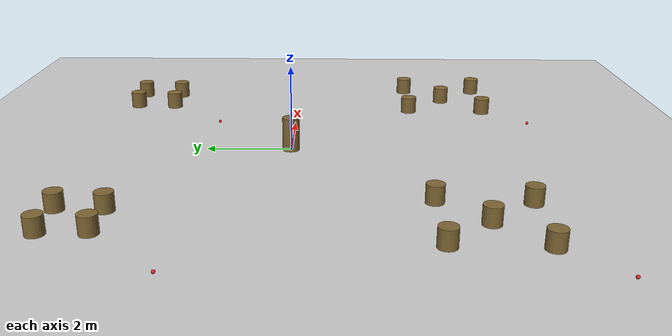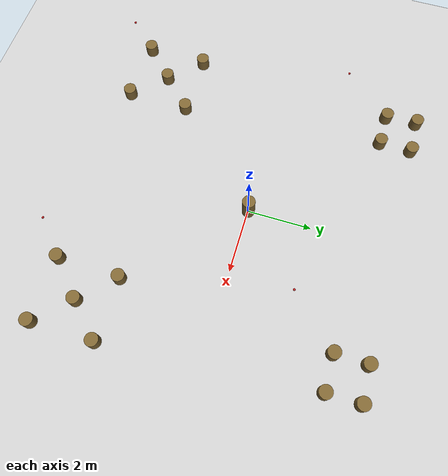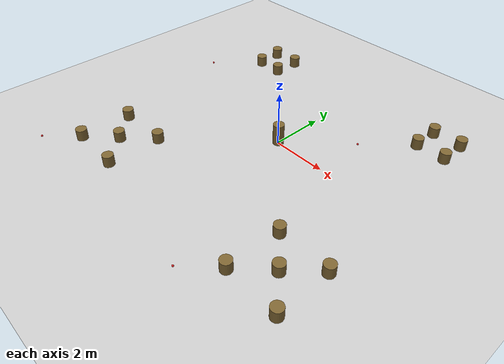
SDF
<sdf version="1.6">
 <world name="default">
  <scene><ambient>0.4 0.4 0.4 1</ambient><background>0.7 0.7 0.7 1</background><shadows>1</shadows></scene>
  <light name="sun" type="directional">
   <pose>0 0 10 0 -0 0</pose>
   <diffuse>0.8 0.8 0.8 1</diffuse>
   <specular>0.2 0.2 0.2 1</specular>
   <attenuation>
    <range>1000</range>
    <constant>0.9</constant>
    <linear>0.01</linear>
    <quadratic>0.001</quadratic>
   </attenuation>
   <direction>-0.5 0.1 -0.9</direction>
  </light>
  <model name="ground_plane">
   <static>1</static>
   <link name="link">
    <collision name="collision">
     <geometry><plane><normal>0 0 1</normal><size>100 100</size></plane></geometry>
     <surface><friction><ode><mu>100</mu><mu2>50</mu2></ode></friction></surface>
    </collision>
    <visual name="visual">
     <cast_shadows>0</cast_shadows>
     <geometry><plane><normal>0 0 1</normal><size>100 100</size></plane></geometry>
     <material>
      <script><uri>file://media/materials/scripts/gazebo.material</uri><name>Gazebo/Grey</name></script>
     </material>
    </visual>
   </link>
  </model>
  <physics name="default_physics" default="0" type="ode">
   <real_time_update_rate>1000</real_time_update_rate>
   <max_step_size>0.001</max_step_size>
   <real_time_factor>1</real_time_factor>
   <ode>
    <solver>
     <type>quick</type>
     <iters>150</iters>
     <precon_iters>0</precon_iters>
     <sor>1.4</sor>
     <use_dynamic_moi_rescaling>1</use_dynamic_moi_rescaling>
    </solver>
    <constraints>
     <cfm>1e-05</cfm>
     <erp>0.2</erp>
     <contact_max_correcting_vel>2000</contact_max_correcting_vel>
     <contact_surface_layer>0.01</contact_surface_layer>
    </constraints>
   </ode>
  </physics>
  <gravity>0 0 -9.8</gravity>
  <magnetic_field>6e-06 2.3e-05 -4.2e-05</magnetic_field>
  <atmosphere type="adiabatic"/>
  <spherical_coordinates>
   <surface_model>EARTH_WGS84</surface_model>
   <latitude_deg>0</latitude_deg>
   <longitude_deg>0</longitude_deg>
   <elevation>0</elevation>
   <heading_deg>0</heading_deg>
  </spherical_coordinates>
  <audio><device>default</device></audio>
  <model name="target_0">
   <link name="link">
    <pose>0 0 0.0375 0 -0 0</pose>
    <inertial>
     <mass>0.1467</mass>
     <inertia>
      <ixx>8.25187e-05</ixx>
      <ixy>0</ixy>
      <ixz>0</ixz>
      <iyy>8.25187e-05</iyy>
      <iyz>0</iyz>
      <izz>8.25187e-05</izz>
     </inertia>
    </inertial>
    <velocity_decay><linear>0</linear><angular>0.005</angular></velocity_decay>
    <visual name="visual">
     <geometry><sphere><radius>0.0375</radius></sphere></geometry>
     <material>
      <script><uri>file://media/materials/scripts/gazebo.material</uri><name>Gazebo/Red</name></script>
      <shader type="pixel"/>
     </material>
    </visual>
    <collision name="collision">
     <geometry><sphere><radius>0.0375</radius></sphere></geometry>
     <surface>
      <friction>
       <ode><mu>1</mu><mu2>1</mu2><fdir1>0 0 0</fdir1><slip1>0</slip1><slip2>0</slip2></ode>
       <torsional>
        <coefficient>1</coefficient>
        <patch_radius>0</patch_radius>
        <surface_radius>0.01</surface_radius>
        <use_patch_radius>0</use_patch_radius>
        <ode><slip>0</slip></ode>
       </torsional>
      </friction>
      <bounce><restitution_coefficient>0</restitution_coefficient><threshold>1e+06</threshold></bounce>
      <contact>
       <collide_without_contact>0</collide_without_contact>
       <collide_without_contact_bitmask>1</collide_without_contact_bitmask>
       <collide_bitmask>1</collide_bitmask>
       <ode>
        <soft_cfm>0</soft_cfm>
        <soft_erp>0.2</soft_erp>
        <kp>100000</kp>
        <kd>100</kd>
        <max_vel>100</max_vel>
        <min_depth>0.001</min_depth>
       </ode>
       <bullet>
        <split_impulse>1</split_impulse>
        <split_impulse_penetration_threshold>-0.01</split_impulse_penetration_threshold>
        <soft_cfm>0</soft_cfm>
        <soft_erp>0.2</soft_erp>
        <kp>100000</kp>
        <kd>100</kd>
       </bullet>
      </contact>
     </surface>
    </collision>
   </link>
   <static>0</static>
   <pose>1.99453 1.98306 -0.001014 0 -0 0</pose>
  </model>
  <model name="target_1">
   <link name="link">
    <pose>0 0 0.0375 0 -0 0</pose>
    <inertial>
     <mass>0.1467</mass>
     <inertia>
      <ixx>8.25187e-05</ixx>
      <ixy>0</ixy>
      <ixz>0</ixz>
      <iyy>8.25187e-05</iyy>
      <iyz>0</iyz>
      <izz>8.25187e-05</izz>
     </inertia>
    </inertial>
    <velocity_decay><linear>0</linear><angular>0.005</angular></velocity_decay>
    <visual name="visual">
     <geometry><sphere><radius>0.0375</radius></sphere></geometry>
     <material>
      <script><uri>file://media/materials/scripts/gazebo.material</uri><name>Gazebo/Red</name></script>
      <shader type="pixel"/>
     </material>
    </visual>
    <collision name="collision">
     <geometry><sphere><radius>0.0375</radius></sphere></geometry>
     <surface>
      <friction>
       <ode><mu>1</mu><mu2>1</mu2><fdir1>0 0 0</fdir1><slip1>0</slip1><slip2>0</slip2></ode>
       <torsional>
        <coefficient>1</coefficient>
        <patch_radius>0</patch_radius>
        <surface_radius>0.01</surface_radius>
        <use_patch_radius>0</use_patch_radius>
        <ode><slip>0</slip></ode>
       </torsional>
      </friction>
      <bounce><restitution_coefficient>0</restitution_coefficient><threshold>1e+06</threshold></bounce>
      <contact>
       <collide_without_contact>0</collide_without_contact>
       <collide_without_contact_bitmask>1</collide_without_contact_bitmask>
       <collide_bitmask>1</collide_bitmask>
       <ode>
        <soft_cfm>0</soft_cfm>
        <soft_erp>0.2</soft_erp>
        <kp>100000</kp>
        <kd>100</kd>
        <max_vel>100</max_vel>
        <min_depth>0.001</min_depth>
       </ode>
       <bullet>
        <split_impulse>1</split_impulse>
        <split_impulse_penetration_threshold>-0.01</split_impulse_penetration_threshold>
        <soft_cfm>0</soft_cfm>
        <soft_erp>0.2</soft_erp>
        <kp>100000</kp>
        <kd>100</kd>
       </bullet>
      </contact>
     </surface>
    </collision>
   </link>
   <static>0</static>
   <pose>-5.99021 1.9713 -0.001014 0 -0 0</pose>
  </model>
  <model name="target_2">
   <link name="link">
    <pose>0 0 0.0375 0 -0 0</pose>
    <inertial>
     <mass>0.1467</mass>
     <inertia>
      <ixx>8.25187e-05</ixx>
      <ixy>0</ixy>
      <ixz>0</ixz>
      <iyy>8.25187e-05</iyy>
      <iyz>0</iyz>
      <izz>8.25187e-05</izz>
     </inertia>
    </inertial>
    <velocity_decay><linear>0</linear><angular>0.005</angular></velocity_decay>
    <visual name="visual">
     <geometry><sphere><radius>0.0375</radius></sphere></geometry>
     <material>
      <script><uri>file://media/materials/scripts/gazebo.material</uri><name>Gazebo/Red</name></script>
      <shader type="pixel"/>
     </material>
    </visual>
    <collision name="collision">
     <geometry><sphere><radius>0.0375</radius></sphere></geometry>
     <surface>
      <friction>
       <ode><mu>1</mu><mu2>1</mu2><fdir1>0 0 0</fdir1><slip1>0</slip1><slip2>0</slip2></ode>
       <torsional>
        <coefficient>1</coefficient>
        <patch_radius>0</patch_radius>
        <surface_radius>0.01</surface_radius>
        <use_patch_radius>0</use_patch_radius>
        <ode><slip>0</slip></ode>
       </torsional>
      </friction>
      <bounce><restitution_coefficient>0</restitution_coefficient><threshold>1e+06</threshold></bounce>
      <contact>
       <collide_without_contact>0</collide_without_contact>
       <collide_without_contact_bitmask>1</collide_without_contact_bitmask>
       <collide_bitmask>1</collide_bitmask>
       <ode>
        <soft_cfm>0</soft_cfm>
        <soft_erp>0.2</soft_erp>
        <kp>100000</kp>
        <kd>100</kd>
        <max_vel>100</max_vel>
        <min_depth>0.001</min_depth>
       </ode>
       <bullet>
        <split_impulse>1</split_impulse>
        <split_impulse_penetration_threshold>-0.01</split_impulse_penetration_threshold>
        <soft_cfm>0</soft_cfm>
        <soft_erp>0.2</soft_erp>
        <kp>100000</kp>
        <kd>100</kd>
       </bullet>
      </contact>
     </surface>
    </collision>
   </link>
   <static>0</static>
   <pose>-5.99633 -6.00633 -0.001014 0 -0 0</pose>
  </model>
  <model name="target_3">
   <link name="link">
    <pose>0 0 0.0375 0 -0 0</pose>
    <inertial>
     <mass>0.1467</mass>
     <inertia>
      <ixx>8.25187e-05</ixx>
      <ixy>0</ixy>
      <ixz>0</ixz>
      <iyy>8.25187e-05</iyy>
      <iyz>0</iyz>
      <izz>8.25187e-05</izz>
     </inertia>
    </inertial>
    <velocity_decay><linear>0</linear><angular>0.005</angular></velocity_decay>
    <visual name="visual">
     <geometry><sphere><radius>0.0375</radius></sphere></geometry>
     <material>
      <script><uri>file://media/materials/scripts/gazebo.material</uri><name>Gazebo/Red</name></script>
      <shader type="pixel"/>
     </material>
    </visual>
    <collision name="collision">
     <geometry><sphere><radius>0.0375</radius></sphere></geometry>
     <surface>
      <friction>
       <ode><mu>1</mu><mu2>1</mu2><fdir1>0 0 0</fdir1><slip1>0</slip1><slip2>0</slip2></ode>
       <torsional>
        <coefficient>1</coefficient>
        <patch_radius>0</patch_radius>
        <surface_radius>0.01</surface_radius>
        <use_patch_radius>0</use_patch_radius>
        <ode><slip>0</slip></ode>
       </torsional>
      </friction>
      <bounce><restitution_coefficient>0</restitution_coefficient><threshold>1e+06</threshold></bounce>
      <contact>
       <collide_without_contact>0</collide_without_contact>
       <collide_without_contact_bitmask>1</collide_without_contact_bitmask>
       <collide_bitmask>1</collide_bitmask>
       <ode>
        <soft_cfm>0</soft_cfm>
        <soft_erp>0.2</soft_erp>
        <kp>100000</kp>
        <kd>100</kd>
        <max_vel>100</max_vel>
        <min_depth>0.001</min_depth>
       </ode>
       <bullet>
        <split_impulse>1</split_impulse>
        <split_impulse_penetration_threshold>-0.01</split_impulse_penetration_threshold>
        <soft_cfm>0</soft_cfm>
        <soft_erp>0.2</soft_erp>
        <kp>100000</kp>
        <kd>100</kd>
       </bullet>
      </contact>
     </surface>
    </collision>
   </link>
   <static>0</static>
   <pose>2.00635 -6.01505 -0.001014 0 -0 0</pose>
  </model>
  <model name="static_cylinder">
   <model name="mini_cylinder">
    <link name="link">
     <inertial>
      <mass>1</mass>
      <inertia><ixx>0.145833</ixx><ixy>0</ixy><ixz>0</ixz><iyy>0.145833</iyy><iyz>0</iyz><izz>0.125</izz></inertia>
     </inertial>
     <visual name="visual">
      <geometry><cylinder><radius>0.2</radius><length>0.8</length></cylinder></geometry>
      <material>
       <script><name>Gazebo/Grey</name><uri>file://media/materials/scripts/gazebo.material</uri></script>
       <shader type="vertex"><normal_map>__default__</normal_map></shader>
       <ambient>0.5 0.4 0.2 1</ambient>
       <diffuse>0.7 0.7 0.7 1</diffuse>
       <specular>0.01 0.01 0.01 1</specular>
       <emissive>0 0 0 1</emissive>
      </material>
     </visual>
     <collision name="collision">
      <geometry><cylinder><radius>0.2</radius><length>0.8</length></cylinder></geometry>
      <surface>
       <friction>
        <ode><mu>1</mu><mu2>1</mu2><fdir1>0 0 0</fdir1><slip1>0</slip1><slip2>0</slip2></ode>
        <torsional>
         <coefficient>1</coefficient>
         <patch_radius>0</patch_radius>
         <surface_radius>0</surface_radius>
         <use_patch_radius>1</use_patch_radius>
         <ode><slip>0</slip></ode>
        </torsional>
       </friction>
       <bounce><restitution_coefficient>0</restitution_coefficient><threshold>1e+06</threshold></bounce>
       <contact>
        <collide_without_contact>0</collide_without_contact>
        <collide_without_contact_bitmask>1</collide_without_contact_bitmask>
        <collide_bitmask>1</collide_bitmask>
        <ode>
         <soft_cfm>0</soft_cfm>
         <soft_erp>0.2</soft_erp>
         <kp>1e+13</kp>
         <kd>1</kd>
         <max_vel>0.01</max_vel>
         <min_depth>0</min_depth>
        </ode>
        <bullet>
         <split_impulse>1</split_impulse>
         <split_impulse_penetration_threshold>-0.01</split_impulse_penetration_threshold>
         <soft_cfm>0</soft_cfm>
         <soft_erp>0.2</soft_erp>
         <kp>1e+13</kp>
         <kd>1</kd>
        </bullet>
       </contact>
      </surface>
     </collision>
    </link>
    <static>0</static>
   </model>
   <static>1</static>
   <pose>-3e-06 0.012452 0.399999 1e-06 1e-06 0</pose>
  </model>
  <model name="static_cylinder_0">
   <model name="mini_cylinder">
    <link name="link">
     <inertial>
      <mass>1</mass>
      <inertia><ixx>0.145833</ixx><ixy>0</ixy><ixz>0</ixz><iyy>0.145833</iyy><iyz>0</iyz><izz>0.125</izz></inertia>
     </inertial>
     <visual name="visual">
      <geometry><cylinder><radius>0.2</radius><length>0.8</length></cylinder></geometry>
      <material>
       <script><name>Gazebo/Grey</name><uri>file://media/materials/scripts/gazebo.material</uri></script>
       <shader type="vertex"><normal_map>__default__</normal_map></shader>
       <ambient>0.5 0.4 0.2 1</ambient>
       <diffuse>0.7 0.7 0.7 1</diffuse>
       <specular>0.01 0.01 0.01 1</specular>
       <emissive>0 0 0 1</emissive>
      </material>
     </visual>
     <collision name="collision">
      <geometry><cylinder><radius>0.2</radius><length>0.8</length></cylinder></geometry>
      <surface>
       <friction>
        <ode><mu>1</mu><mu2>1</mu2><fdir1>0 0 0</fdir1><slip1>0</slip1><slip2>0</slip2></ode>
        <torsional>
         <coefficient>1</coefficient>
         <patch_radius>0</patch_radius>
         <surface_radius>0</surface_radius>
         <use_patch_radius>1</use_patch_radius>
         <ode><slip>0</slip></ode>
        </torsional>
       </friction>
       <bounce><restitution_coefficient>0</restitution_coefficient><threshold>1e+06</threshold></bounce>
       <contact>
        <collide_without_contact>0</collide_without_contact>
        <collide_without_contact_bitmask>1</collide_without_contact_bitmask>
        <collide_bitmask>1</collide_bitmask>
        <ode>
         <soft_cfm>0</soft_cfm>
         <soft_erp>0.2</soft_erp>
         <kp>1e+13</kp>
         <kd>1</kd>
         <max_vel>0.01</max_vel>
         <min_depth>0</min_depth>
        </ode>
        <bullet>
         <split_impulse>1</split_impulse>
         <split_impulse_penetration_threshold>-0.01</split_impulse_penetration_threshold>
         <soft_cfm>0</soft_cfm>
         <soft_erp>0.2</soft_erp>
         <kp>1e+13</kp>
         <kd>1</kd>
        </bullet>
       </contact>
      </surface>
     </collision>
    </link>
    <static>0</static>
   </model>
   <static>1</static>
   <pose>4.51928 4.47591 0 0 -0 0</pose>
  </model>
  <model name="static_cylinder_1">
   <model name="mini_cylinder">
    <link name="link">
     <inertial>
      <mass>1</mass>
      <inertia><ixx>0.145833</ixx><ixy>0</ixy><ixz>0</ixz><iyy>0.145833</iyy><iyz>0</iyz><izz>0.125</izz></inertia>
     </inertial>
     <visual name="visual">
      <geometry><cylinder><radius>0.2</radius><length>0.8</length></cylinder></geometry>
      <material>
       <script><name>Gazebo/Grey</name><uri>file://media/materials/scripts/gazebo.material</uri></script>
       <shader type="vertex"><normal_map>__default__</normal_map></shader>
       <ambient>0.5 0.4 0.2 1</ambient>
       <diffuse>0.7 0.7 0.7 1</diffuse>
       <specular>0.01 0.01 0.01 1</specular>
       <emissive>0 0 0 1</emissive>
      </material>
     </visual>
     <collision name="collision">
      <geometry><cylinder><radius>0.2</radius><length>0.8</length></cylinder></geometry>
      <surface>
       <friction>
        <ode><mu>1</mu><mu2>1</mu2><fdir1>0 0 0</fdir1><slip1>0</slip1><slip2>0</slip2></ode>
        <torsional>
         <coefficient>1</coefficient>
         <patch_radius>0</patch_radius>
         <surface_radius>0</surface_radius>
         <use_patch_radius>1</use_patch_radius>
         <ode><slip>0</slip></ode>
        </torsional>
       </friction>
       <bounce><restitution_coefficient>0</restitution_coefficient><threshold>1e+06</threshold></bounce>
       <contact>
        <collide_without_contact>0</collide_without_contact>
        <collide_without_contact_bitmask>1</collide_without_contact_bitmask>
        <collide_bitmask>1</collide_bitmask>
        <ode>
         <soft_cfm>0</soft_cfm>
         <soft_erp>0.2</soft_erp>
         <kp>1e+13</kp>
         <kd>1</kd>
         <max_vel>0.01</max_vel>
         <min_depth>0</min_depth>
        </ode>
        <bullet>
         <split_impulse>1</split_impulse>
         <split_impulse_penetration_threshold>-0.01</split_impulse_penetration_threshold>
         <soft_cfm>0</soft_cfm>
         <soft_erp>0.2</soft_erp>
         <kp>1e+13</kp>
         <kd>1</kd>
        </bullet>
       </contact>
      </surface>
     </collision>
    </link>
    <static>0</static>
   </model>
   <static>1</static>
   <pose>4.51928 3.44681 0 0 -0 0</pose>
  </model>
  <model name="static_cylinder_2">
   <model name="mini_cylinder">
    <link name="link">
     <inertial>
      <mass>1</mass>
      <inertia><ixx>0.145833</ixx><ixy>0</ixy><ixz>0</ixz><iyy>0.145833</iyy><iyz>0</iyz><izz>0.125</izz></inertia>
     </inertial>
     <visual name="visual">
      <geometry><cylinder><radius>0.2</radius><length>0.8</length></cylinder></geometry>
      <material>
       <script><name>Gazebo/Grey</name><uri>file://media/materials/scripts/gazebo.material</uri></script>
       <shader type="vertex"><normal_map>__default__</normal_map></shader>
       <ambient>0.5 0.4 0.2 1</ambient>
       <diffuse>0.7 0.7 0.7 1</diffuse>
       <specular>0.01 0.01 0.01 1</specular>
       <emissive>0 0 0 1</emissive>
      </material>
     </visual>
     <collision name="collision">
      <geometry><cylinder><radius>0.2</radius><length>0.8</length></cylinder></geometry>
      <surface>
       <friction>
        <ode><mu>1</mu><mu2>1</mu2><fdir1>0 0 0</fdir1><slip1>0</slip1><slip2>0</slip2></ode>
        <torsional>
         <coefficient>1</coefficient>
         <patch_radius>0</patch_radius>
         <surface_radius>0</surface_radius>
         <use_patch_radius>1</use_patch_radius>
         <ode><slip>0</slip></ode>
        </torsional>
       </friction>
       <bounce><restitution_coefficient>0</restitution_coefficient><threshold>1e+06</threshold></bounce>
       <contact>
        <collide_without_contact>0</collide_without_contact>
        <collide_without_contact_bitmask>1</collide_without_contact_bitmask>
        <collide_bitmask>1</collide_bitmask>
        <ode>
         <soft_cfm>0</soft_cfm>
         <soft_erp>0.2</soft_erp>
         <kp>1e+13</kp>
         <kd>1</kd>
         <max_vel>0.01</max_vel>
         <min_depth>0</min_depth>
        </ode>
        <bullet>
         <split_impulse>1</split_impulse>
         <split_impulse_penetration_threshold>-0.01</split_impulse_penetration_threshold>
         <soft_cfm>0</soft_cfm>
         <soft_erp>0.2</soft_erp>
         <kp>1e+13</kp>
         <kd>1</kd>
        </bullet>
       </contact>
      </surface>
     </collision>
    </link>
    <static>0</static>
   </model>
   <static>1</static>
   <pose>3.46877 4.4545 0 0 -0 0</pose>
  </model>
  <model name="static_cylinder_3">
   <model name="mini_cylinder">
    <link name="link">
     <inertial>
      <mass>1</mass>
      <inertia><ixx>0.145833</ixx><ixy>0</ixy><ixz>0</ixz><iyy>0.145833</iyy><iyz>0</iyz><izz>0.125</izz></inertia>
     </inertial>
     <visual name="visual">
      <geometry><cylinder><radius>0.2</radius><length>0.8</length></cylinder></geometry>
      <material>
       <script><name>Gazebo/Grey</name><uri>file://media/materials/scripts/gazebo.material</uri></script>
       <shader type="vertex"><normal_map>__default__</normal_map></shader>
       <ambient>0.5 0.4 0.2 1</ambient>
       <diffuse>0.7 0.7 0.7 1</diffuse>
       <specular>0.01 0.01 0.01 1</specular>
       <emissive>0 0 0 1</emissive>
      </material>
     </visual>
     <collision name="collision">
      <geometry><cylinder><radius>0.2</radius><length>0.8</length></cylinder></geometry>
      <surface>
       <friction>
        <ode><mu>1</mu><mu2>1</mu2><fdir1>0 0 0</fdir1><slip1>0</slip1><slip2>0</slip2></ode>
        <torsional>
         <coefficient>1</coefficient>
         <patch_radius>0</patch_radius>
         <surface_radius>0</surface_radius>
         <use_patch_radius>1</use_patch_radius>
         <ode><slip>0</slip></ode>
        </torsional>
       </friction>
       <bounce><restitution_coefficient>0</restitution_coefficient><threshold>1e+06</threshold></bounce>
       <contact>
        <collide_without_contact>0</collide_without_contact>
        <collide_without_contact_bitmask>1</collide_without_contact_bitmask>
        <collide_bitmask>1</collide_bitmask>
        <ode>
         <soft_cfm>0</soft_cfm>
         <soft_erp>0.2</soft_erp>
         <kp>1e+13</kp>
         <kd>1</kd>
         <max_vel>0.01</max_vel>
         <min_depth>0</min_depth>
        </ode>
        <bullet>
         <split_impulse>1</split_impulse>
         <split_impulse_penetration_threshold>-0.01</split_impulse_penetration_threshold>
         <soft_cfm>0</soft_cfm>
         <soft_erp>0.2</soft_erp>
         <kp>1e+13</kp>
         <kd>1</kd>
        </bullet>
       </contact>
      </surface>
     </collision>
    </link>
    <static>0</static>
   </model>
   <static>1</static>
   <pose>3.44732 3.44681 0 0 -0 0</pose>
  </model>
  <model name="static_cylinder_4">
   <model name="mini_cylinder">
    <link name="link">
     <inertial>
      <mass>1</mass>
      <inertia><ixx>0.145833</ixx><ixy>0</ixy><ixz>0</ixz><iyy>0.145833</iyy><iyz>0</iyz><izz>0.125</izz></inertia>
     </inertial>
     <visual name="visual">
      <geometry><cylinder><radius>0.2</radius><length>0.8</length></cylinder></geometry>
      <material>
       <script><name>Gazebo/Grey</name><uri>file://media/materials/scripts/gazebo.material</uri></script>
       <shader type="vertex"><normal_map>__default__</normal_map></shader>
       <ambient>0.5 0.4 0.2 1</ambient>
       <diffuse>0.7 0.7 0.7 1</diffuse>
       <specular>0.01 0.01 0.01 1</specular>
       <emissive>0 0 0 1</emissive>
      </material>
     </visual>
     <collision name="collision">
      <geometry><cylinder><radius>0.2</radius><length>0.8</length></cylinder></geometry>
      <surface>
       <friction>
        <ode><mu>1</mu><mu2>1</mu2><fdir1>0 0 0</fdir1><slip1>0</slip1><slip2>0</slip2></ode>
        <torsional>
         <coefficient>1</coefficient>
         <patch_radius>0</patch_radius>
         <surface_radius>0</surface_radius>
         <use_patch_radius>1</use_patch_radius>
         <ode><slip>0</slip></ode>
        </torsional>
       </friction>
       <bounce><restitution_coefficient>0</restitution_coefficient><threshold>1e+06</threshold></bounce>
       <contact>
        <collide_without_contact>0</collide_without_contact>
        <collide_without_contact_bitmask>1</collide_without_contact_bitmask>
        <collide_bitmask>1</collide_bitmask>
        <ode>
         <soft_cfm>0</soft_cfm>
         <soft_erp>0.2</soft_erp>
         <kp>1e+13</kp>
         <kd>1</kd>
         <max_vel>0.01</max_vel>
         <min_depth>0</min_depth>
        </ode>
        <bullet>
         <split_impulse>1</split_impulse>
         <split_impulse_penetration_threshold>-0.01</split_impulse_penetration_threshold>
         <soft_cfm>0</soft_cfm>
         <soft_erp>0.2</soft_erp>
         <kp>1e+13</kp>
         <kd>1</kd>
        </bullet>
       </contact>
      </surface>
     </collision>
    </link>
    <static>0</static>
   </model>
   <static>1</static>
   <pose>5.02619 -3.05005 0 0 -0 0</pose>
  </model>
  <model name="static_cylinder_5">
   <model name="mini_cylinder">
    <link name="link">
     <inertial>
      <mass>1</mass>
      <inertia><ixx>0.145833</ixx><ixy>0</ixy><ixz>0</ixz><iyy>0.145833</iyy><iyz>0</iyz><izz>0.125</izz></inertia>
     </inertial>
     <visual name="visual">
      <geometry><cylinder><radius>0.2</radius><length>0.8</length></cylinder></geometry>
      <material>
       <script><name>Gazebo/Grey</name><uri>file://media/materials/scripts/gazebo.material</uri></script>
       <shader type="vertex"><normal_map>__default__</normal_map></shader>
       <ambient>0.5 0.4 0.2 1</ambient>
       <diffuse>0.7 0.7 0.7 1</diffuse>
       <specular>0.01 0.01 0.01 1</specular>
       <emissive>0 0 0 1</emissive>
      </material>
     </visual>
     <collision name="collision">
      <geometry><cylinder><radius>0.2</radius><length>0.8</length></cylinder></geometry>
      <surface>
       <friction>
        <ode><mu>1</mu><mu2>1</mu2><fdir1>0 0 0</fdir1><slip1>0</slip1><slip2>0</slip2></ode>
        <torsional>
         <coefficient>1</coefficient>
         <patch_radius>0</patch_radius>
         <surface_radius>0</surface_radius>
         <use_patch_radius>1</use_patch_radius>
         <ode><slip>0</slip></ode>
        </torsional>
       </friction>
       <bounce><restitution_coefficient>0</restitution_coefficient><threshold>1e+06</threshold></bounce>
       <contact>
        <collide_without_contact>0</collide_without_contact>
        <collide_without_contact_bitmask>1</collide_without_contact_bitmask>
        <collide_bitmask>1</collide_bitmask>
        <ode>
         <soft_cfm>0</soft_cfm>
         <soft_erp>0.2</soft_erp>
         <kp>1e+13</kp>
         <kd>1</kd>
         <max_vel>0.01</max_vel>
         <min_depth>0</min_depth>
        </ode>
        <bullet>
         <split_impulse>1</split_impulse>
         <split_impulse_penetration_threshold>-0.01</split_impulse_penetration_threshold>
         <soft_cfm>0</soft_cfm>
         <soft_erp>0.2</soft_erp>
         <kp>1e+13</kp>
         <kd>1</kd>
        </bullet>
       </contact>
      </surface>
     </collision>
    </link>
    <static>0</static>
   </model>
   <static>1</static>
   <pose>4.08292 -4.01484 0 0 -0 0</pose>
  </model>
  <model name="static_cylinder_6">
   <model name="mini_cylinder">
    <link name="link">
     <inertial>
      <mass>1</mass>
      <inertia><ixx>0.145833</ixx><ixy>0</ixy><ixz>0</ixz><iyy>0.145833</iyy><iyz>0</iyz><izz>0.125</izz></inertia>
     </inertial>
     <visual name="visual">
      <geometry><cylinder><radius>0.2</radius><length>0.8</length></cylinder></geometry>
      <material>
       <script><name>Gazebo/Grey</name><uri>file://media/materials/scripts/gazebo.material</uri></script>
       <shader type="vertex"><normal_map>__default__</normal_map></shader>
       <ambient>0.5 0.4 0.2 1</ambient>
       <diffuse>0.7 0.7 0.7 1</diffuse>
       <specular>0.01 0.01 0.01 1</specular>
       <emissive>0 0 0 1</emissive>
      </material>
     </visual>
     <collision name="collision">
      <geometry><cylinder><radius>0.2</radius><length>0.8</length></cylinder></geometry>
      <surface>
       <friction>
        <ode><mu>1</mu><mu2>1</mu2><fdir1>0 0 0</fdir1><slip1>0</slip1><slip2>0</slip2></ode>
        <torsional>
         <coefficient>1</coefficient>
         <patch_radius>0</patch_radius>
         <surface_radius>0</surface_radius>
         <use_patch_radius>1</use_patch_radius>
         <ode><slip>0</slip></ode>
        </torsional>
       </friction>
       <bounce><restitution_coefficient>0</restitution_coefficient><threshold>1e+06</threshold></bounce>
       <contact>
        <collide_without_contact>0</collide_without_contact>
        <collide_without_contact_bitmask>1</collide_without_contact_bitmask>
        <collide_bitmask>1</collide_bitmask>
        <ode>
         <soft_cfm>0</soft_cfm>
         <soft_erp>0.2</soft_erp>
         <kp>1e+13</kp>
         <kd>1</kd>
         <max_vel>0.01</max_vel>
         <min_depth>0</min_depth>
        </ode>
        <bullet>
         <split_impulse>1</split_impulse>
         <split_impulse_penetration_threshold>-0.01</split_impulse_penetration_threshold>
         <soft_cfm>0</soft_cfm>
         <soft_erp>0.2</soft_erp>
         <kp>1e+13</kp>
         <kd>1</kd>
        </bullet>
       </contact>
      </surface>
     </collision>
    </link>
    <static>0</static>
   </model>
   <static>1</static>
   <pose>3.11814 -3.02867 0 0 -0 0</pose>
  </model>
  <model name="static_cylinder_7">
   <model name="mini_cylinder">
    <link name="link">
     <inertial>
      <mass>1</mass>
      <inertia><ixx>0.145833</ixx><ixy>0</ixy><ixz>0</ixz><iyy>0.145833</iyy><iyz>0</iyz><izz>0.125</izz></inertia>
     </inertial>
     <visual name="visual">
      <geometry><cylinder><radius>0.2</radius><length>0.8</length></cylinder></geometry>
      <material>
       <script><name>Gazebo/Grey</name><uri>file://media/materials/scripts/gazebo.material</uri></script>
       <shader type="vertex"><normal_map>__default__</normal_map></shader>
       <ambient>0.5 0.4 0.2 1</ambient>
       <diffuse>0.7 0.7 0.7 1</diffuse>
       <specular>0.01 0.01 0.01 1</specular>
       <emissive>0 0 0 1</emissive>
      </material>
     </visual>
     <collision name="collision">
      <geometry><cylinder><radius>0.2</radius><length>0.8</length></cylinder></geometry>
      <surface>
       <friction>
        <ode><mu>1</mu><mu2>1</mu2><fdir1>0 0 0</fdir1><slip1>0</slip1><slip2>0</slip2></ode>
        <torsional>
         <coefficient>1</coefficient>
         <patch_radius>0</patch_radius>
         <surface_radius>0</surface_radius>
         <use_patch_radius>1</use_patch_radius>
         <ode><slip>0</slip></ode>
        </torsional>
       </friction>
       <bounce><restitution_coefficient>0</restitution_coefficient><threshold>1e+06</threshold></bounce>
       <contact>
        <collide_without_contact>0</collide_without_contact>
        <collide_without_contact_bitmask>1</collide_without_contact_bitmask>
        <collide_bitmask>1</collide_bitmask>
        <ode>
         <soft_cfm>0</soft_cfm>
         <soft_erp>0.2</soft_erp>
         <kp>1e+13</kp>
         <kd>1</kd>
         <max_vel>0.01</max_vel>
         <min_depth>0</min_depth>
        </ode>
        <bullet>
         <split_impulse>1</split_impulse>
         <split_impulse_penetration_threshold>-0.01</split_impulse_penetration_threshold>
         <soft_cfm>0</soft_cfm>
         <soft_erp>0.2</soft_erp>
         <kp>1e+13</kp>
         <kd>1</kd>
        </bullet>
       </contact>
      </surface>
     </collision>
    </link>
    <static>0</static>
   </model>
   <static>1</static>
   <pose>3.05386 -5.00094 0 0 -0 0</pose>
  </model>
  <model name="static_cylinder_8">
   <model name="mini_cylinder">
    <link name="link">
     <inertial>
      <mass>1</mass>
      <inertia><ixx>0.145833</ixx><ixy>0</ixy><ixz>0</ixz><iyy>0.145833</iyy><iyz>0</iyz><izz>0.125</izz></inertia>
     </inertial>
     <visual name="visual">
      <geometry><cylinder><radius>0.2</radius><length>0.8</length></cylinder></geometry>
      <material>
       <script><name>Gazebo/Grey</name><uri>file://media/materials/scripts/gazebo.material</uri></script>
       <shader type="vertex"><normal_map>__default__</normal_map></shader>
       <ambient>0.5 0.4 0.2 1</ambient>
       <diffuse>0.7 0.7 0.7 1</diffuse>
       <specular>0.01 0.01 0.01 1</specular>
       <emissive>0 0 0 1</emissive>
      </material>
     </visual>
     <collision name="collision">
      <geometry><cylinder><radius>0.2</radius><length>0.8</length></cylinder></geometry>
      <surface>
       <friction>
        <ode><mu>1</mu><mu2>1</mu2><fdir1>0 0 0</fdir1><slip1>0</slip1><slip2>0</slip2></ode>
        <torsional>
         <coefficient>1</coefficient>
         <patch_radius>0</patch_radius>
         <surface_radius>0</surface_radius>
         <use_patch_radius>1</use_patch_radius>
         <ode><slip>0</slip></ode>
        </torsional>
       </friction>
       <bounce><restitution_coefficient>0</restitution_coefficient><threshold>1e+06</threshold></bounce>
       <contact>
        <collide_without_contact>0</collide_without_contact>
        <collide_without_contact_bitmask>1</collide_without_contact_bitmask>
        <collide_bitmask>1</collide_bitmask>
        <ode>
         <soft_cfm>0</soft_cfm>
         <soft_erp>0.2</soft_erp>
         <kp>1e+13</kp>
         <kd>1</kd>
         <max_vel>0.01</max_vel>
         <min_depth>0</min_depth>
        </ode>
        <bullet>
         <split_impulse>1</split_impulse>
         <split_impulse_penetration_threshold>-0.01</split_impulse_penetration_threshold>
         <soft_cfm>0</soft_cfm>
         <soft_erp>0.2</soft_erp>
         <kp>1e+13</kp>
         <kd>1</kd>
        </bullet>
       </contact>
      </surface>
     </collision>
    </link>
    <static>0</static>
   </model>
   <static>1</static>
   <pose>5.02619 -5.02238 0 0 -0 0</pose>
  </model>
  <model name="static_cylinder_9">
   <model name="mini_cylinder">
    <link name="link">
     <inertial>
      <mass>1</mass>
      <inertia><ixx>0.145833</ixx><ixy>0</ixy><ixz>0</ixz><iyy>0.145833</iyy><iyz>0</iyz><izz>0.125</izz></inertia>
     </inertial>
     <visual name="visual">
      <geometry><cylinder><radius>0.2</radius><length>0.8</length></cylinder></geometry>
      <material>
       <script><name>Gazebo/Grey</name><uri>file://media/materials/scripts/gazebo.material</uri></script>
       <shader type="vertex"><normal_map>__default__</normal_map></shader>
       <ambient>0.5 0.4 0.2 1</ambient>
       <diffuse>0.7 0.7 0.7 1</diffuse>
       <specular>0.01 0.01 0.01 1</specular>
       <emissive>0 0 0 1</emissive>
      </material>
     </visual>
     <collision name="collision">
      <geometry><cylinder><radius>0.2</radius><length>0.8</length></cylinder></geometry>
      <surface>
       <friction>
        <ode><mu>1</mu><mu2>1</mu2><fdir1>0 0 0</fdir1><slip1>0</slip1><slip2>0</slip2></ode>
        <torsional>
         <coefficient>1</coefficient>
         <patch_radius>0</patch_radius>
         <surface_radius>0</surface_radius>
         <use_patch_radius>1</use_patch_radius>
         <ode><slip>0</slip></ode>
        </torsional>
       </friction>
       <bounce><restitution_coefficient>0</restitution_coefficient><threshold>1e+06</threshold></bounce>
       <contact>
        <collide_without_contact>0</collide_without_contact>
        <collide_without_contact_bitmask>1</collide_without_contact_bitmask>
        <collide_bitmask>1</collide_bitmask>
        <ode>
         <soft_cfm>0</soft_cfm>
         <soft_erp>0.2</soft_erp>
         <kp>1e+13</kp>
         <kd>1</kd>
         <max_vel>0.01</max_vel>
         <min_depth>0</min_depth>
        </ode>
        <bullet>
         <split_impulse>1</split_impulse>
         <split_impulse_penetration_threshold>-0.01</split_impulse_penetration_threshold>
         <soft_cfm>0</soft_cfm>
         <soft_erp>0.2</soft_erp>
         <kp>1e+13</kp>
         <kd>1</kd>
        </bullet>
       </contact>
      </surface>
     </collision>
    </link>
    <static>0</static>
   </model>
   <static>1</static>
   <pose>-3.48854 4.48127 0 0 -0 0</pose>
  </model>
  <model name="static_cylinder_10">
   <model name="mini_cylinder">
    <link name="link">
     <inertial>
      <mass>1</mass>
      <inertia><ixx>0.145833</ixx><ixy>0</ixy><ixz>0</ixz><iyy>0.145833</iyy><iyz>0</iyz><izz>0.125</izz></inertia>
     </inertial>
     <visual name="visual">
      <geometry><cylinder><radius>0.2</radius><length>0.8</length></cylinder></geometry>
      <material>
       <script><name>Gazebo/Grey</name><uri>file://media/materials/scripts/gazebo.material</uri></script>
       <shader type="vertex"><normal_map>__default__</normal_map></shader>
       <ambient>0.5 0.4 0.2 1</ambient>
       <diffuse>0.7 0.7 0.7 1</diffuse>
       <specular>0.01 0.01 0.01 1</specular>
       <emissive>0 0 0 1</emissive>
      </material>
     </visual>
     <collision name="collision">
      <geometry><cylinder><radius>0.2</radius><length>0.8</length></cylinder></geometry>
      <surface>
       <friction>
        <ode><mu>1</mu><mu2>1</mu2><fdir1>0 0 0</fdir1><slip1>0</slip1><slip2>0</slip2></ode>
        <torsional>
         <coefficient>1</coefficient>
         <patch_radius>0</patch_radius>
         <surface_radius>0</surface_radius>
         <use_patch_radius>1</use_patch_radius>
         <ode><slip>0</slip></ode>
        </torsional>
       </friction>
       <bounce><restitution_coefficient>0</restitution_coefficient><threshold>1e+06</threshold></bounce>
       <contact>
        <collide_without_contact>0</collide_without_contact>
        <collide_without_contact_bitmask>1</collide_without_contact_bitmask>
        <collide_bitmask>1</collide_bitmask>
        <ode>
         <soft_cfm>0</soft_cfm>
         <soft_erp>0.2</soft_erp>
         <kp>1e+13</kp>
         <kd>1</kd>
         <max_vel>0.01</max_vel>
         <min_depth>0</min_depth>
        </ode>
        <bullet>
         <split_impulse>1</split_impulse>
         <split_impulse_penetration_threshold>-0.01</split_impulse_penetration_threshold>
         <soft_cfm>0</soft_cfm>
         <soft_erp>0.2</soft_erp>
         <kp>1e+13</kp>
         <kd>1</kd>
        </bullet>
       </contact>
      </surface>
     </collision>
    </link>
    <static>0</static>
   </model>
   <static>1</static>
   <pose>-3.51023 3.47365 0 0 -0 0</pose>
  </model>
  <model name="static_cylinder_11">
   <model name="mini_cylinder">
    <link name="link">
     <inertial>
      <mass>1</mass>
      <inertia><ixx>0.145833</ixx><ixy>0</ixy><ixz>0</ixz><iyy>0.145833</iyy><iyz>0</iyz><izz>0.125</izz></inertia>
     </inertial>
     <visual name="visual">
      <geometry><cylinder><radius>0.2</radius><length>0.8</length></cylinder></geometry>
      <material>
       <script><name>Gazebo/Grey</name><uri>file://media/materials/scripts/gazebo.material</uri></script>
       <shader type="vertex"><normal_map>__default__</normal_map></shader>
       <ambient>0.5 0.4 0.2 1</ambient>
       <diffuse>0.7 0.7 0.7 1</diffuse>
       <specular>0.01 0.01 0.01 1</specular>
       <emissive>0 0 0 1</emissive>
      </material>
     </visual>
     <collision name="collision">
      <geometry><cylinder><radius>0.2</radius><length>0.8</length></cylinder></geometry>
      <surface>
       <friction>
        <ode><mu>1</mu><mu2>1</mu2><fdir1>0 0 0</fdir1><slip1>0</slip1><slip2>0</slip2></ode>
        <torsional>
         <coefficient>1</coefficient>
         <patch_radius>0</patch_radius>
         <surface_radius>0</surface_radius>
         <use_patch_radius>1</use_patch_radius>
         <ode><slip>0</slip></ode>
        </torsional>
       </friction>
       <bounce><restitution_coefficient>0</restitution_coefficient><threshold>1e+06</threshold></bounce>
       <contact>
        <collide_without_contact>0</collide_without_contact>
        <collide_without_contact_bitmask>1</collide_without_contact_bitmask>
        <collide_bitmask>1</collide_bitmask>
        <ode>
         <soft_cfm>0</soft_cfm>
         <soft_erp>0.2</soft_erp>
         <kp>1e+13</kp>
         <kd>1</kd>
         <max_vel>0.01</max_vel>
         <min_depth>0</min_depth>
        </ode>
        <bullet>
         <split_impulse>1</split_impulse>
         <split_impulse_penetration_threshold>-0.01</split_impulse_penetration_threshold>
         <soft_cfm>0</soft_cfm>
         <soft_erp>0.2</soft_erp>
         <kp>1e+13</kp>
         <kd>1</kd>
        </bullet>
       </contact>
      </surface>
     </collision>
    </link>
    <static>0</static>
   </model>
   <static>1</static>
   <pose>-4.51785 3.4951 0 0 -0 0</pose>
  </model>
  <model name="static_cylinder_12">
   <model name="mini_cylinder">
    <link name="link">
     <inertial>
      <mass>1</mass>
      <inertia><ixx>0.145833</ixx><ixy>0</ixy><ixz>0</ixz><iyy>0.145833</iyy><iyz>0</iyz><izz>0.125</izz></inertia>
     </inertial>
     <visual name="visual">
      <geometry><cylinder><radius>0.2</radius><length>0.8</length></cylinder></geometry>
      <material>
       <script><name>Gazebo/Grey</name><uri>file://media/materials/scripts/gazebo.material</uri></script>
       <shader type="vertex"><normal_map>__default__</normal_map></shader>
       <ambient>0.5 0.4 0.2 1</ambient>
       <diffuse>0.7 0.7 0.7 1</diffuse>
       <specular>0.01 0.01 0.01 1</specular>
       <emissive>0 0 0 1</emissive>
      </material>
     </visual>
     <collision name="collision">
      <geometry><cylinder><radius>0.2</radius><length>0.8</length></cylinder></geometry>
      <surface>
       <friction>
        <ode><mu>1</mu><mu2>1</mu2><fdir1>0 0 0</fdir1><slip1>0</slip1><slip2>0</slip2></ode>
        <torsional>
         <coefficient>1</coefficient>
         <patch_radius>0</patch_radius>
         <surface_radius>0</surface_radius>
         <use_patch_radius>1</use_patch_radius>
         <ode><slip>0</slip></ode>
        </torsional>
       </friction>
       <bounce><restitution_coefficient>0</restitution_coefficient><threshold>1e+06</threshold></bounce>
       <contact>
        <collide_without_contact>0</collide_without_contact>
        <collide_without_contact_bitmask>1</collide_without_contact_bitmask>
        <collide_bitmask>1</collide_bitmask>
        <ode>
         <soft_cfm>0</soft_cfm>
         <soft_erp>0.2</soft_erp>
         <kp>1e+13</kp>
         <kd>1</kd>
         <max_vel>0.01</max_vel>
         <min_depth>0</min_depth>
        </ode>
        <bullet>
         <split_impulse>1</split_impulse>
         <split_impulse_penetration_threshold>-0.01</split_impulse_penetration_threshold>
         <soft_cfm>0</soft_cfm>
         <soft_erp>0.2</soft_erp>
         <kp>1e+13</kp>
         <kd>1</kd>
        </bullet>
       </contact>
      </surface>
     </collision>
    </link>
    <static>0</static>
   </model>
   <static>1</static>
   <pose>-4.56071 4.48127 0 0 -0 0</pose>
  </model>
  <model name="static_cylinder_13">
   <model name="mini_cylinder">
    <link name="link">
     <inertial>
      <mass>1</mass>
      <inertia><ixx>0.145833</ixx><ixy>0</ixy><ixz>0</ixz><iyy>0.145833</iyy><iyz>0</iyz><izz>0.125</izz></inertia>
     </inertial>
     <visual name="visual">
      <geometry><cylinder><radius>0.2</radius><length>0.8</length></cylinder></geometry>
      <material>
       <script><name>Gazebo/Grey</name><uri>file://media/materials/scripts/gazebo.material</uri></script>
       <shader type="vertex"><normal_map>__default__</normal_map></shader>
       <ambient>0.5 0.4 0.2 1</ambient>
       <diffuse>0.7 0.7 0.7 1</diffuse>
       <specular>0.01 0.01 0.01 1</specular>
       <emissive>0 0 0 1</emissive>
      </material>
     </visual>
     <collision name="collision">
      <geometry><cylinder><radius>0.2</radius><length>0.8</length></cylinder></geometry>
      <surface>
       <friction>
        <ode><mu>1</mu><mu2>1</mu2><fdir1>0 0 0</fdir1><slip1>0</slip1><slip2>0</slip2></ode>
        <torsional>
         <coefficient>1</coefficient>
         <patch_radius>0</patch_radius>
         <surface_radius>0</surface_radius>
         <use_patch_radius>1</use_patch_radius>
         <ode><slip>0</slip></ode>
        </torsional>
       </friction>
       <bounce><restitution_coefficient>0</restitution_coefficient><threshold>1e+06</threshold></bounce>
       <contact>
        <collide_without_contact>0</collide_without_contact>
        <collide_without_contact_bitmask>1</collide_without_contact_bitmask>
        <collide_bitmask>1</collide_bitmask>
        <ode>
         <soft_cfm>0</soft_cfm>
         <soft_erp>0.2</soft_erp>
         <kp>1e+13</kp>
         <kd>1</kd>
         <max_vel>0.01</max_vel>
         <min_depth>0</min_depth>
        </ode>
        <bullet>
         <split_impulse>1</split_impulse>
         <split_impulse_penetration_threshold>-0.01</split_impulse_penetration_threshold>
         <soft_cfm>0</soft_cfm>
         <soft_erp>0.2</soft_erp>
         <kp>1e+13</kp>
         <kd>1</kd>
        </bullet>
       </contact>
      </surface>
     </collision>
    </link>
    <static>0</static>
   </model>
   <static>1</static>
   <pose>-3.96042 -4.00851 0 0 -0 0</pose>
  </model>
  <model name="static_cylinder_14">
   <model name="mini_cylinder">
    <link name="link">
     <inertial>
      <mass>1</mass>
      <inertia><ixx>0.145833</ixx><ixy>0</ixy><ixz>0</ixz><iyy>0.145833</iyy><iyz>0</iyz><izz>0.125</izz></inertia>
     </inertial>
     <visual name="visual">
      <geometry><cylinder><radius>0.2</radius><length>0.8</length></cylinder></geometry>
      <material>
       <script><name>Gazebo/Grey</name><uri>file://media/materials/scripts/gazebo.material</uri></script>
       <shader type="vertex"><normal_map>__default__</normal_map></shader>
       <ambient>0.5 0.4 0.2 1</ambient>
       <diffuse>0.7 0.7 0.7 1</diffuse>
       <specular>0.01 0.01 0.01 1</specular>
       <emissive>0 0 0 1</emissive>
      </material>
     </visual>
     <collision name="collision">
      <geometry><cylinder><radius>0.2</radius><length>0.8</length></cylinder></geometry>
      <surface>
       <friction>
        <ode><mu>1</mu><mu2>1</mu2><fdir1>0 0 0</fdir1><slip1>0</slip1><slip2>0</slip2></ode>
        <torsional>
         <coefficient>1</coefficient>
         <patch_radius>0</patch_radius>
         <surface_radius>0</surface_radius>
         <use_patch_radius>1</use_patch_radius>
         <ode><slip>0</slip></ode>
        </torsional>
       </friction>
       <bounce><restitution_coefficient>0</restitution_coefficient><threshold>1e+06</threshold></bounce>
       <contact>
        <collide_without_contact>0</collide_without_contact>
        <collide_without_contact_bitmask>1</collide_without_contact_bitmask>
        <collide_bitmask>1</collide_bitmask>
        <ode>
         <soft_cfm>0</soft_cfm>
         <soft_erp>0.2</soft_erp>
         <kp>1e+13</kp>
         <kd>1</kd>
         <max_vel>0.01</max_vel>
         <min_depth>0</min_depth>
        </ode>
        <bullet>
         <split_impulse>1</split_impulse>
         <split_impulse_penetration_threshold>-0.01</split_impulse_penetration_threshold>
         <soft_cfm>0</soft_cfm>
         <soft_erp>0.2</soft_erp>
         <kp>1e+13</kp>
         <kd>1</kd>
        </bullet>
       </contact>
      </surface>
     </collision>
    </link>
    <static>0</static>
   </model>
   <static>1</static>
   <pose>-2.97425 -3.04372 0 0 -0 0</pose>
  </model>
  <model name="static_cylinder_15">
   <model name="mini_cylinder">
    <link name="link">
     <inertial>
      <mass>1</mass>
      <inertia><ixx>0.145833</ixx><ixy>0</ixy><ixz>0</ixz><iyy>0.145833</iyy><iyz>0</iyz><izz>0.125</izz></inertia>
     </inertial>
     <visual name="visual">
      <geometry><cylinder><radius>0.2</radius><length>0.8</length></cylinder></geometry>
      <material>
       <script><name>Gazebo/Grey</name><uri>file://media/materials/scripts/gazebo.material</uri></script>
       <shader type="vertex"><normal_map>__default__</normal_map></shader>
       <ambient>0.5 0.4 0.2 1</ambient>
       <diffuse>0.7 0.7 0.7 1</diffuse>
       <specular>0.01 0.01 0.01 1</specular>
       <emissive>0 0 0 1</emissive>
      </material>
     </visual>
     <collision name="collision">
      <geometry><cylinder><radius>0.2</radius><length>0.8</length></cylinder></geometry>
      <surface>
       <friction>
        <ode><mu>1</mu><mu2>1</mu2><fdir1>0 0 0</fdir1><slip1>0</slip1><slip2>0</slip2></ode>
        <torsional>
         <coefficient>1</coefficient>
         <patch_radius>0</patch_radius>
         <surface_radius>0</surface_radius>
         <use_patch_radius>1</use_patch_radius>
         <ode><slip>0</slip></ode>
        </torsional>
       </friction>
       <bounce><restitution_coefficient>0</restitution_coefficient><threshold>1e+06</threshold></bounce>
       <contact>
        <collide_without_contact>0</collide_without_contact>
        <collide_without_contact_bitmask>1</collide_without_contact_bitmask>
        <collide_bitmask>1</collide_bitmask>
        <ode>
         <soft_cfm>0</soft_cfm>
         <soft_erp>0.2</soft_erp>
         <kp>1e+13</kp>
         <kd>1</kd>
         <max_vel>0.01</max_vel>
         <min_depth>0</min_depth>
        </ode>
        <bullet>
         <split_impulse>1</split_impulse>
         <split_impulse_penetration_threshold>-0.01</split_impulse_penetration_threshold>
         <soft_cfm>0</soft_cfm>
         <soft_erp>0.2</soft_erp>
         <kp>1e+13</kp>
         <kd>1</kd>
        </bullet>
       </contact>
      </surface>
     </collision>
    </link>
    <static>0</static>
   </model>
   <static>1</static>
   <pose>-3.01715 -5.01606 0 0 -0 0</pose>
  </model>
  <model name="static_cylinder_16">
   <model name="mini_cylinder">
    <link name="link">
     <inertial>
      <mass>1</mass>
      <inertia><ixx>0.145833</ixx><ixy>0</ixy><ixz>0</ixz><iyy>0.145833</iyy><iyz>0</iyz><izz>0.125</izz></inertia>
     </inertial>
     <visual name="visual">
      <geometry><cylinder><radius>0.2</radius><length>0.8</length></cylinder></geometry>
      <material>
       <script><name>Gazebo/Grey</name><uri>file://media/materials/scripts/gazebo.material</uri></script>
       <shader type="vertex"><normal_map>__default__</normal_map></shader>
       <ambient>0.5 0.4 0.2 1</ambient>
       <diffuse>0.7 0.7 0.7 1</diffuse>
       <specular>0.01 0.01 0.01 1</specular>
       <emissive>0 0 0 1</emissive>
      </material>
     </visual>
     <collision name="collision">
      <geometry><cylinder><radius>0.2</radius><length>0.8</length></cylinder></geometry>
      <surface>
       <friction>
        <ode><mu>1</mu><mu2>1</mu2><fdir1>0 0 0</fdir1><slip1>0</slip1><slip2>0</slip2></ode>
        <torsional>
         <coefficient>1</coefficient>
         <patch_radius>0</patch_radius>
         <surface_radius>0</surface_radius>
         <use_patch_radius>1</use_patch_radius>
         <ode><slip>0</slip></ode>
        </torsional>
       </friction>
       <bounce><restitution_coefficient>0</restitution_coefficient><threshold>1e+06</threshold></bounce>
       <contact>
        <collide_without_contact>0</collide_without_contact>
        <collide_without_contact_bitmask>1</collide_without_contact_bitmask>
        <collide_bitmask>1</collide_bitmask>
        <ode>
         <soft_cfm>0</soft_cfm>
         <soft_erp>0.2</soft_erp>
         <kp>1e+13</kp>
         <kd>1</kd>
         <max_vel>0.01</max_vel>
         <min_depth>0</min_depth>
        </ode>
        <bullet>
         <split_impulse>1</split_impulse>
         <split_impulse_penetration_threshold>-0.01</split_impulse_penetration_threshold>
         <soft_cfm>0</soft_cfm>
         <soft_erp>0.2</soft_erp>
         <kp>1e+13</kp>
         <kd>1</kd>
        </bullet>
       </contact>
      </surface>
     </collision>
    </link>
    <static>0</static>
   </model>
   <static>1</static>
   <pose>-4.90372 -3.04372 0 0 -0 0</pose>
  </model>
  <model name="static_cylinder_17">
   <model name="mini_cylinder">
    <link name="link">
     <inertial>
      <mass>1</mass>
      <inertia><ixx>0.145833</ixx><ixy>0</ixy><ixz>0</ixz><iyy>0.145833</iyy><iyz>0</iyz><izz>0.125</izz></inertia>
     </inertial>
     <visual name="visual">
      <geometry><cylinder><radius>0.2</radius><length>0.8</length></cylinder></geometry>
      <material>
       <script><name>Gazebo/Grey</name><uri>file://media/materials/scripts/gazebo.material</uri></script>
       <shader type="vertex"><normal_map>__default__</normal_map></shader>
       <ambient>0.5 0.4 0.2 1</ambient>
       <diffuse>0.7 0.7 0.7 1</diffuse>
       <specular>0.01 0.01 0.01 1</specular>
       <emissive>0 0 0 1</emissive>
      </material>
     </visual>
     <collision name="collision">
      <geometry><cylinder><radius>0.2</radius><length>0.8</length></cylinder></geometry>
      <surface>
       <friction>
        <ode><mu>1</mu><mu2>1</mu2><fdir1>0 0 0</fdir1><slip1>0</slip1><slip2>0</slip2></ode>
        <torsional>
         <coefficient>1</coefficient>
         <patch_radius>0</patch_radius>
         <surface_radius>0</surface_radius>
         <use_patch_radius>1</use_patch_radius>
         <ode><slip>0</slip></ode>
        </torsional>
       </friction>
       <bounce><restitution_coefficient>0</restitution_coefficient><threshold>1e+06</threshold></bounce>
       <contact>
        <collide_without_contact>0</collide_without_contact>
        <collide_without_contact_bitmask>1</collide_without_contact_bitmask>
        <collide_bitmask>1</collide_bitmask>
        <ode>
         <soft_cfm>0</soft_cfm>
         <soft_erp>0.2</soft_erp>
         <kp>1e+13</kp>
         <kd>1</kd>
         <max_vel>0.01</max_vel>
         <min_depth>0</min_depth>
        </ode>
        <bullet>
         <split_impulse>1</split_impulse>
         <split_impulse_penetration_threshold>-0.01</split_impulse_penetration_threshold>
         <soft_cfm>0</soft_cfm>
         <soft_erp>0.2</soft_erp>
         <kp>1e+13</kp>
         <kd>1</kd>
        </bullet>
       </contact>
      </surface>
     </collision>
    </link>
    <static>0</static>
   </model>
   <static>1</static>
   <pose>-4.94662 -4.95178 0 0 -0 0</pose>
  </model>
 </world>
</sdf>
